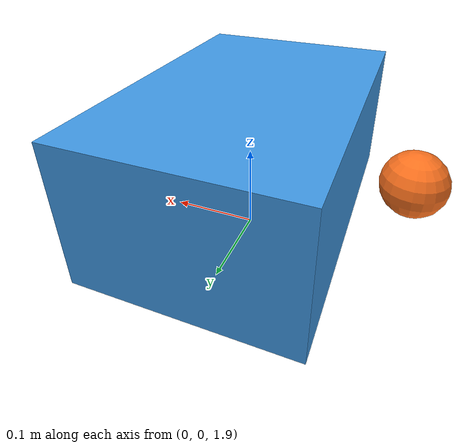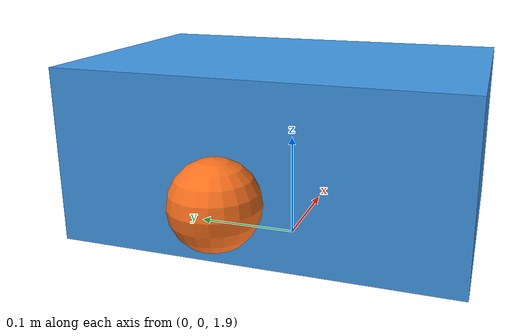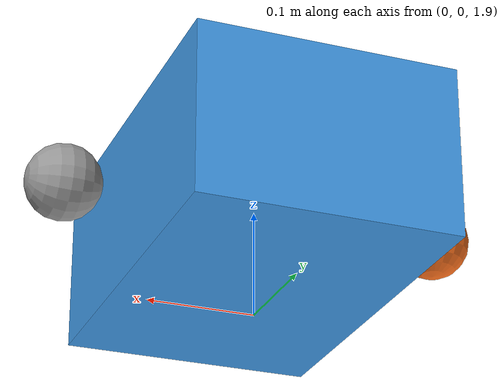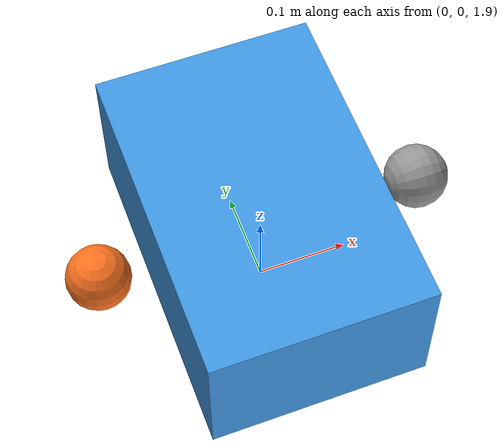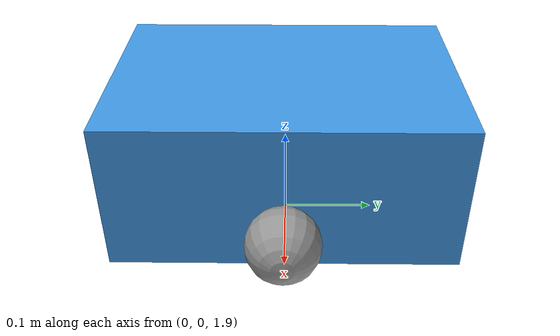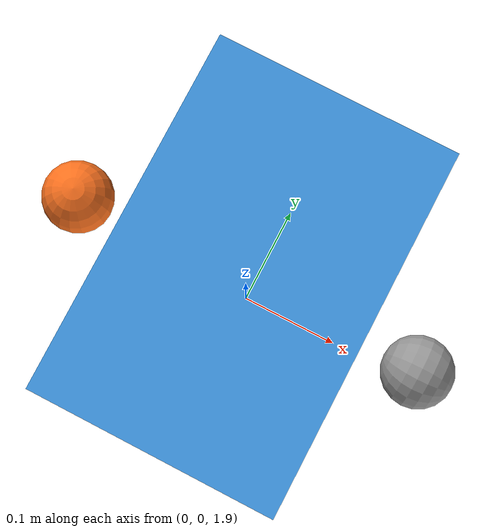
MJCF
<mujoco model="opengl rangefinder visuals">
  <visual>
    <global azimuth="135" elevation="-24" fovy="45"/>
    <rgba rangefinder="1 .45 .12 1"/>
  </visual>
  <worldbody>
    <light directional="true" pos="0 -2 5" dir="0 .3 -1"/>
    <geom name="floor" type="plane" size="4 4 .05" rgba=".25 .32 .38 1"/>
    <body name="sensor_rig" pos="0 0 2">
      <geom type="box" size=".12 .18 .08" rgba=".25 .6 .9 1"/>
      <site name="down_ray" pos="-.18 0 0" quat="0 1 0 0" size=".035" rgba="1 .45 .12 1"/>
      <site name="miss_ray" pos=".18 0 0" quat=".7071068 0 .7071068 0" size=".035"
            rgba=".6 .6 .6 1"/>
      <camera name="depth_grid" pos="0 0 .25" resolution="3 2" fovy="38"/>
    </body>
  </worldbody>
  <sensor>
    <rangefinder name="site_hit" site="down_ray" data="dist dir origin point normal depth"/>
    <rangefinder name="site_miss" site="miss_ray" data="dist point normal"/>
    <rangefinder name="camera_grid" camera="depth_grid" data="dist point normal"/>
  </sensor>
</mujoco>
